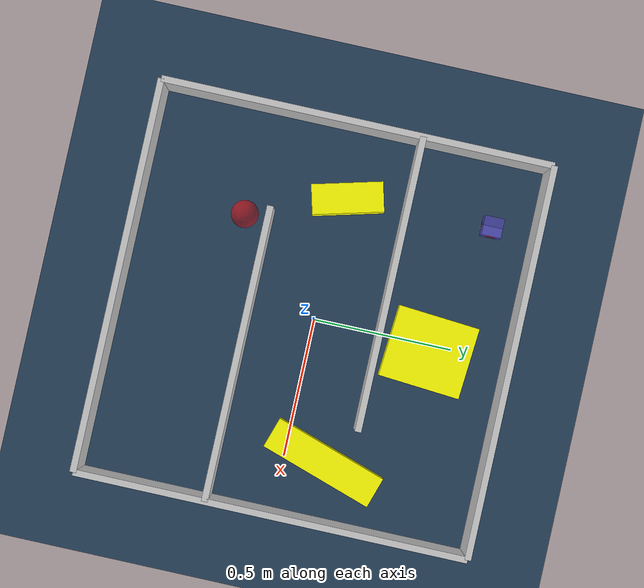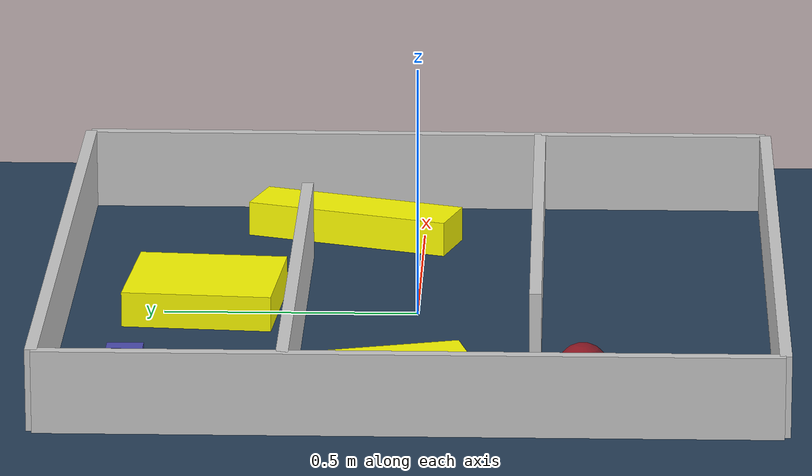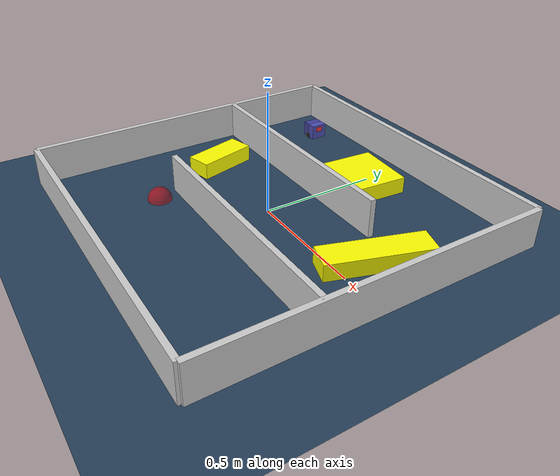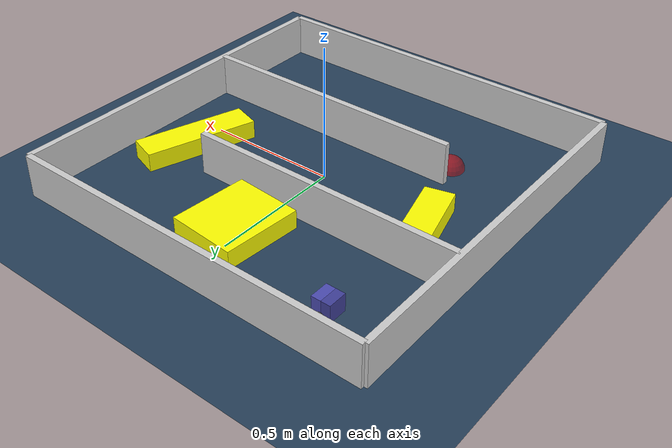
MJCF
<?xml version='1.0' encoding='utf-8'?>
<mujoco model="generated_environment">
  <option timestep="0.002" integrator="implicitfast" cone="elliptic" iterations="100" gravity="0 0 -9.81" />
  <default>
    <geom density="1" />
  </default>
  <asset>
    <texture builtin="gradient" height="3072" rgb1="0.3 0.5 0.7" rgb2="0 0 0" type="skybox" width="512" />
    <texture builtin="checker" height="300" mark="edge" markrgb="0.8 0.8 0.8" name="groundplane" rgb1="0.2 0.3 0.4" rgb2="0.1 0.2 0.3" type="2d" width="300" />
    <material name="groundplane" reflectance="0.2" texrepeat="5 5" texture="groundplane" texuniform="true" />
    <material name="robot" rgba="1.0 1.0 0.0 1.0" />
  </asset>
  <worldbody>
    <light dir="0 0 -1" directional="true" pos="0 0 1.5" />
    <geom condim="4" friction="0.5 0.005 0.001" material="groundplane" name="floor" size="0 0 0.05" type="plane" />
    <body name="walls">
      <geom name="wall_1" condim="4" pos="-0.699000 0.000000 0.080000" rgba="0.800000011920929 0.800000011920929 0.800000011920929 1.0" size="0.011650 0.699000 0.080000" type="box" />
      <geom name="wall_2" condim="4" pos="0.699000 0.000000 0.080000" rgba="0.800000011920929 0.800000011920929 0.800000011920929 1.0" size="0.011650 0.699000 0.080000" type="box" />
      <geom name="wall_3" condim="4" pos="0.000000 -0.699000 0.080000" rgba="0.800000011920929 0.800000011920929 0.800000011920929 1.0" size="0.699000 0.011650 0.080000" type="box" />
      <geom name="wall_4" condim="4" pos="0.000000 0.699000 0.080000" rgba="0.800000011920929 0.800000011920929 0.800000011920929 1.0" size="0.699000 0.011650 0.080000" type="box" />
      <geom name="wall_5" condim="4" pos="0.174750 -0.233000 0.080000" rgba="0.800000011920929 0.800000011920929 0.800000011920929 1.0" size="0.524250 0.011650 0.080000" type="box" />
      <geom name="wall_6" condim="4" pos="-0.174750 0.233000 0.080000" rgba="0.800000011920929 0.800000011920929 0.800000011920929 1.0" size="0.524250 0.011650 0.080000" type="box" />
    </body>
    <body name="car" pos="-0.45499999999999996 0.545 0.010000">
      <freejoint name="car_freejoint" />
      <inertial pos="0.000000 0 0.037500" mass="0.350000" diaginertia="0.000266 0.000266 0.000286" />
      <geom name="front_chassis_collision" type="box" pos="0.017500 0 0.037500" size="0.017500 0.035000 0.032500" rgba="0.3 0.3 0.7 1" />
      <geom name="rear_chassis_collision" type="box" pos="-0.017500 0 0.037500" size="0.017500 0.035000 0.032500" rgba="0.25 0.25 0.6 1" />
      <geom name="front_marker" type="box" pos="0.034000 0 0.050500" size="0.002000 0.015000 0.010000" rgba="1.0 0.2 0.2 1" contype="0" conaffinity="0" />
      <body name="rear_support_body" pos="-0.030000 0.000000 0.002500">
        <joint name="rear_caster_joint" type="ball" damping="0.0001" />
        <inertial pos="0 0 0" mass="0.025000" diaginertia="0.000001 0.000001 0.000001" />
        <geom name="rear_support" type="sphere" pos="0 0 0" size="0.002500" friction="0.000000 0.000000 0.000000" rgba="0.7 0.1 0.1 1" />
      </body>
      <body name="front_support_body" pos="0.030000 0.000000 0.002500">
        <joint name="front_caster_joint" type="ball" damping="0.0001" />
        <inertial pos="0 0 0" mass="0.025000" diaginertia="0.000001 0.000001 0.000001" />
        <geom name="front_support" type="sphere" pos="0 0 0" size="0.002500" friction="0.000000 0.000000 0.000000" rgba="0.1 0.7 0.1 1" />
      </body>
      <body name="left_wheel" pos="0.000000 0.037500 0.015000">
        <inertial pos="0 0 0" mass="0.050000" diaginertia="0.000003 0.000006 0.000003" />
        <joint name="left_wheel_joint" type="hinge" axis="0 1 0" />
        <geom name="left_wheel_collision" type="cylinder" size="0.015000 0.000500" euler="90 0 0" rgba="0.1 0.1 0.1 1" />
      </body>
      <body name="right_wheel" pos="0.000000 -0.037500 0.015000">
        <inertial pos="0 0 0" mass="0.050000" diaginertia="0.000003 0.000006 0.000003" />
        <joint name="right_wheel_joint" type="hinge" axis="0 1 0" />
        <geom name="right_wheel_collision" type="cylinder" size="0.015000 0.000500" euler="90 0 0" rgba="0.1 0.1 0.1 1" />
      </body>
    </body>
    <body name="obstacle_0_movable">
      <geom name="obstacle_0_movable" condim="4" pos="0.48744951003755954 0.14191046450387357 0.035" euler="0 0 342.0003534658867" friction="0.0 0.005 0.001" rgba="1 1 0 1" size="0.05715787346118611 0.2112648395752199 0.035" type="box" mass="0.1" />
      <joint type="free" />
    </body>
    <body name="obstacle_1_movable">
      <geom name="obstacle_1_movable" condim="4" pos="0.02536492096787024 0.4215510822022075 0.035" euler="0 0 355.57200994805436" friction="0.0 0.005 0.001" rgba="1 1 0 1" size="0.12933383115182662 0.14722748927782522 0.035" type="box" mass="0.1" />
      <joint type="free" />
    </body>
    <body name="obstacle_2_movable">
      <geom name="obstacle_2_movable" condim="4" pos="-0.44381192120278745 0.022616807773542913 0.035" euler="0 0 284.6610727453859" friction="0.0 0.005 0.001" rgba="1 1 0 1" size="0.12766731351815575 0.05373687498498493 0.035" type="box" mass="0.1" />
      <joint type="free" />
    </body>
    <site name="goal" type="sphere" pos="-0.31499999999999984 -0.32500000000000007 0.0" size="0.05" rgba="1 0 0 0.5" />
  </worldbody>
  <actuator>
    <velocity name="left_wheel_drive" joint="left_wheel_joint" ctrlrange="-25.000000 25.000000" kv="0.750000" forcerange="-0.300000 0.300000" />
    <velocity name="right_wheel_drive" joint="right_wheel_joint" ctrlrange="-25.000000 25.000000" kv="0.750000" forcerange="-0.300000 0.300000" />
  </actuator>
</mujoco>
